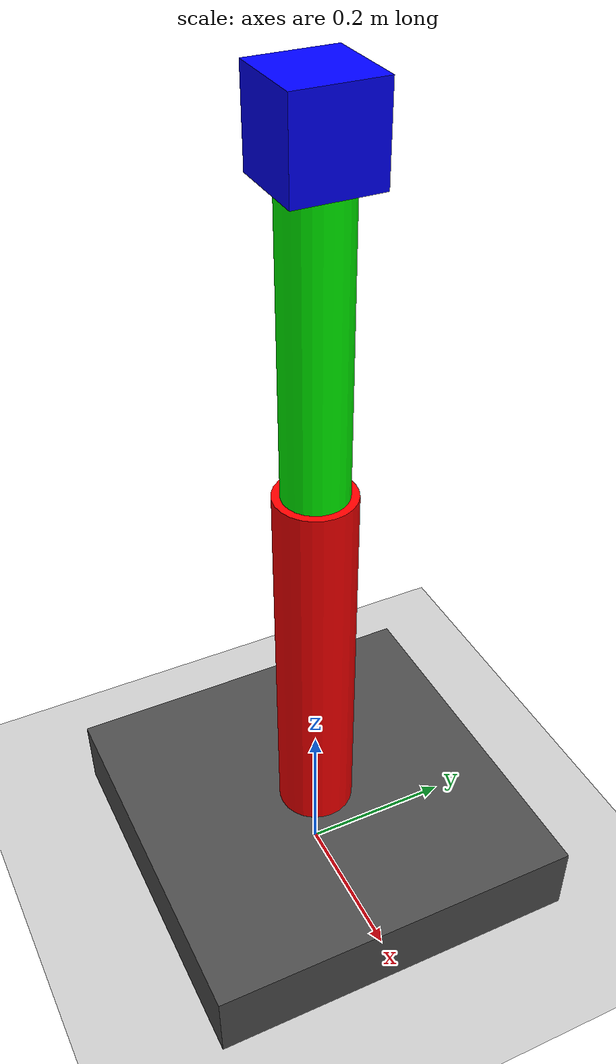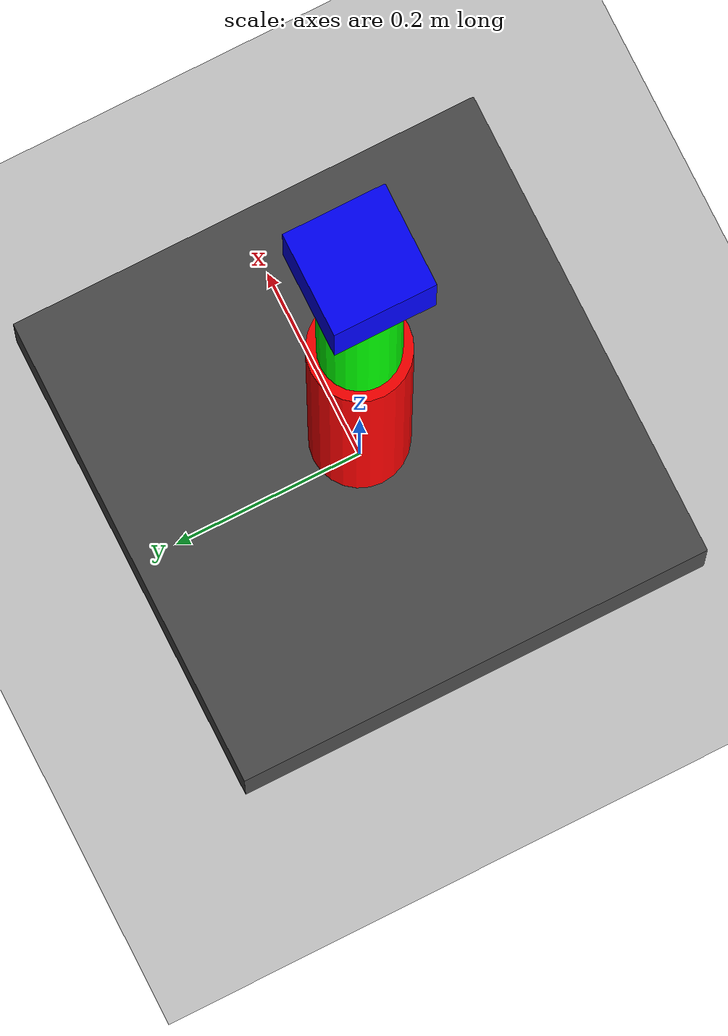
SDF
<?xml version="1.0" ?>
<sdf version="1.9">
  <world name="robotic_arm_world">
    <plugin filename="gz-sim-physics-system" name="gz::sim::systems::Physics" />
    <plugin filename="gz-sim-scene-broadcaster-system" name="gz::sim::systems::SceneBroadcaster" />
    <gravity>0 0 0</gravity>

    <scene>
       <ambient>0.6 0.6 0.6 1</ambient>
       <background>0.8 0.8 0.8 1</background>
       <shadows>true</shadows>
    </scene>

    <light type="directional" name="sun">
      <cast_shadows>true</cast_shadows>
      <pose>0 0 10 0 0 0</pose>
      <diffuse>1.0 1.0 1.0 1</diffuse>
      <specular>0.5 0.5 0.5 1</specular>
    </light>

    <!-- GROUND PLANE -->
    <model name="ground_plane">
      <static>true</static>
      <link name="link">
        <collision name="collision">
          <geometry><plane><normal>0 0 1</normal><size>100 100</size></plane></geometry>
        </collision>
        <visual name="visual">
          <geometry><plane><normal>0 0 1</normal><size>100 100</size></plane></geometry>
          <material>
            <ambient>0.8 0.8 0.8 1</ambient>
            <diffuse>0.8 0.8 0.8 1</diffuse>
            <specular>0.8 0.8 0.8 1</specular>
          </material>
        </visual>
      </link>
    </model>

    <model name="RoboticArm">
      <pose>0 0 0.05 0 0 0</pose>

      <!-- BASE -->
      <link name="base">
        <inertial>
          <mass>10.0</mass>
          <inertia>
            <ixx>1.0</ixx><iyy>1.0</iyy><izz>1.0</izz>
          </inertia>
        </inertial>
        <visual name="base_vis">
          <geometry><box><size>0.5 0.5 0.1</size></box></geometry>
          <material>
            <ambient>0.3 0.3 0.3 1</ambient>
            <diffuse>0.3 0.3 0.3 1</diffuse>
            <specular>0.1 0.1 0.1 1</specular>
          </material>
        </visual>
      </link>

      <!-- LOWER ARM -->
      <link name="lower_arm">
        <pose>0 0 0.3 0 0 0</pose>
        <inertial>
          <mass>1.0</mass>
          <inertia>
            <ixx>0.1</ixx><iyy>0.1</iyy><izz>0.1</izz>
          </inertia>
        </inertial>
        <visual name="lower_arm_vis">
          <geometry><cylinder><radius>0.05</radius><length>0.5</length></cylinder></geometry>
          <material>
            <ambient>1.0 0 0 1</ambient>
            <diffuse>1.0 0 0 1</diffuse>
            <specular>0.5 0.5 0.5 1</specular>
          </material>
        </visual>
      </link>

      <!-- UPPER ARM -->
      <link name="upper_arm">
        <pose>0 0 0.7 0 0 0</pose>
        <inertial>
          <mass>0.8</mass>
          <inertia>
            <ixx>0.08</ixx><iyy>0.08</iyy><izz>0.08</izz>
          </inertia>
        </inertial>
        <visual name="upper_arm_vis">
          <geometry><cylinder><radius>0.04</radius><length>0.4</length></cylinder></geometry>
          <material>
            <ambient>0 1.0 0 1</ambient>
            <diffuse>0 1.0 0 1</diffuse>
            <specular>0.5 0.5 0.5 1</specular>
          </material>
        </visual>
      </link>

      <!-- GRIPPER -->
      <link name="gripper">
        <pose>0 0 0.95 0 0 0</pose>
        <visual name="gripper_vis">
          <geometry><box><size>0.1 0.1 0.1</size></box></geometry>
          <material>
            <ambient>0 0 1.0 1</ambient>
            <diffuse>0 0 1.0 1</diffuse>
            <specular>0.5 0.5 0.5 1</specular>
          </material>
        </visual>
      </link>

      <plugin filename="libTablePlugin.so" name="custom_sim::TableControlPlugin" />
    </model>
  </world>
</sdf>
